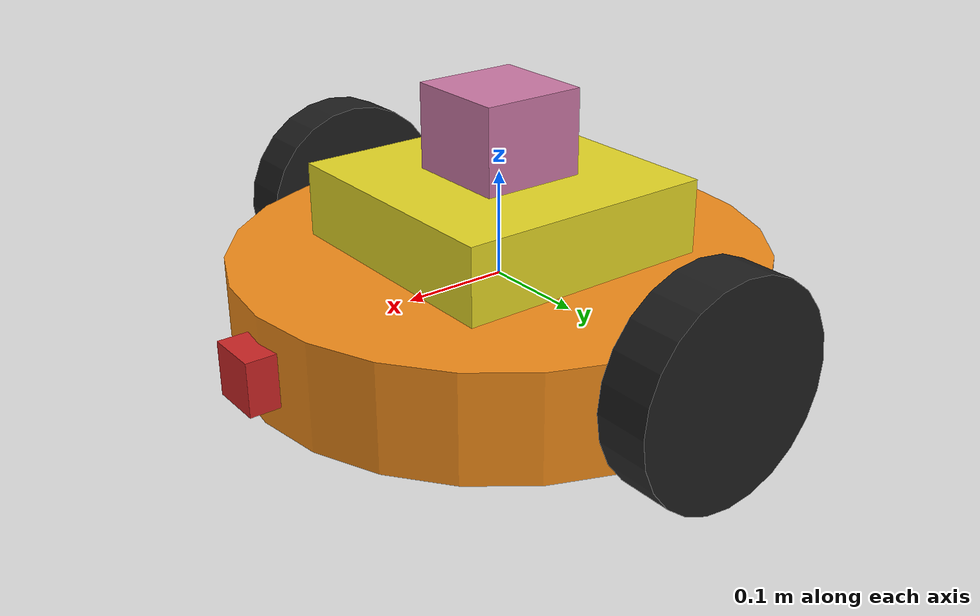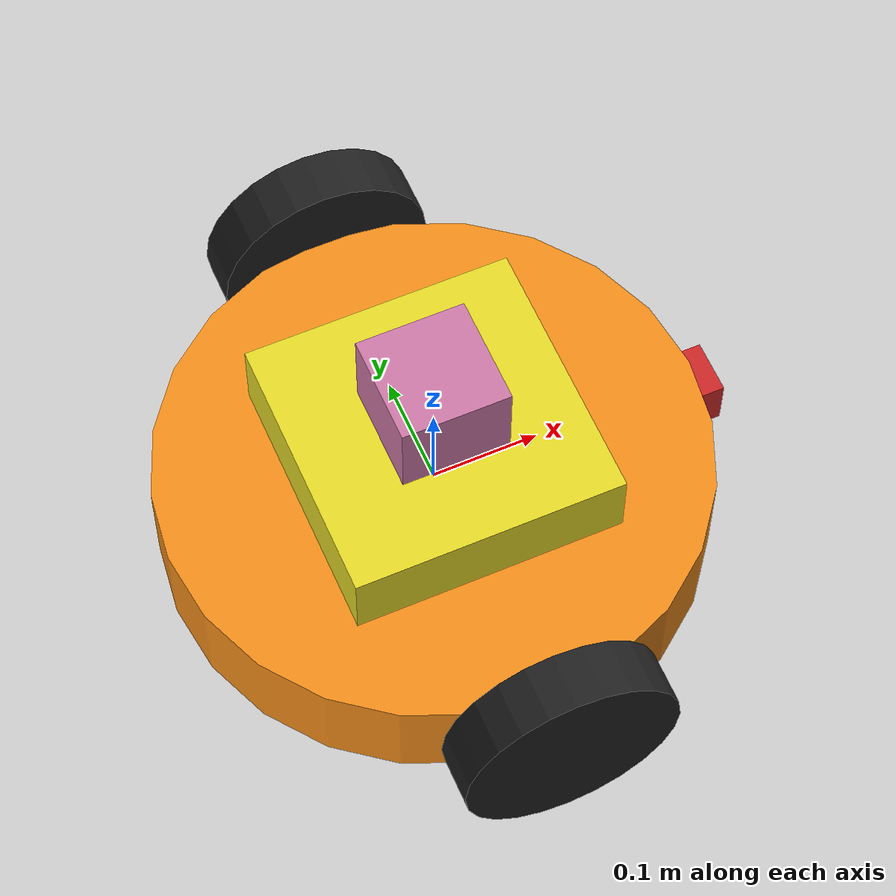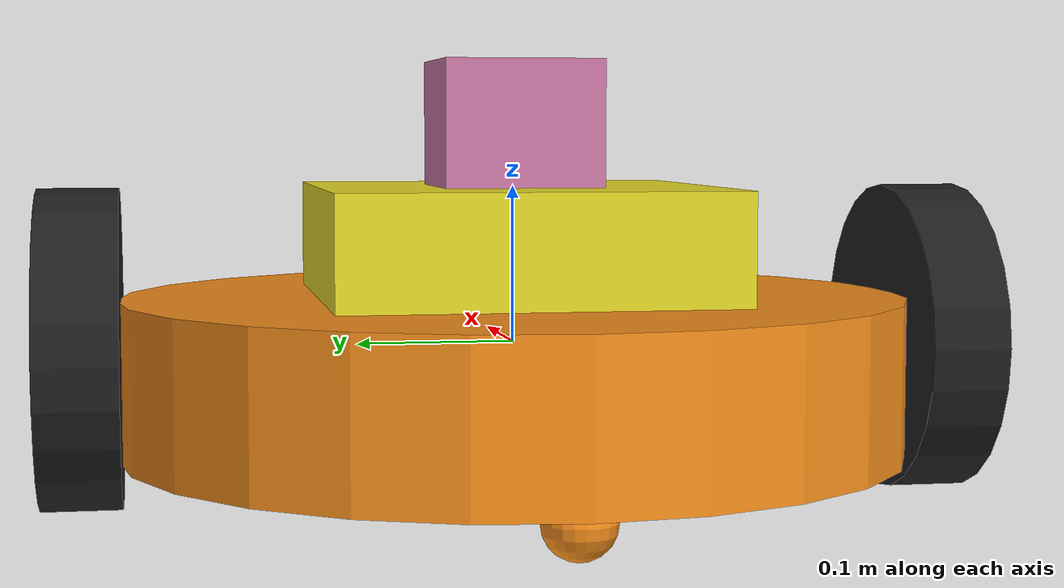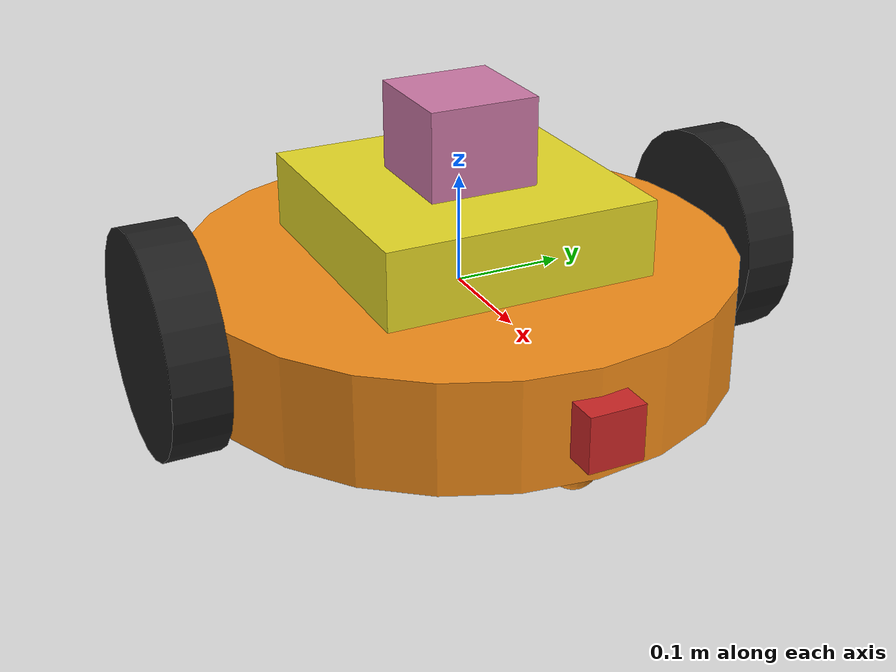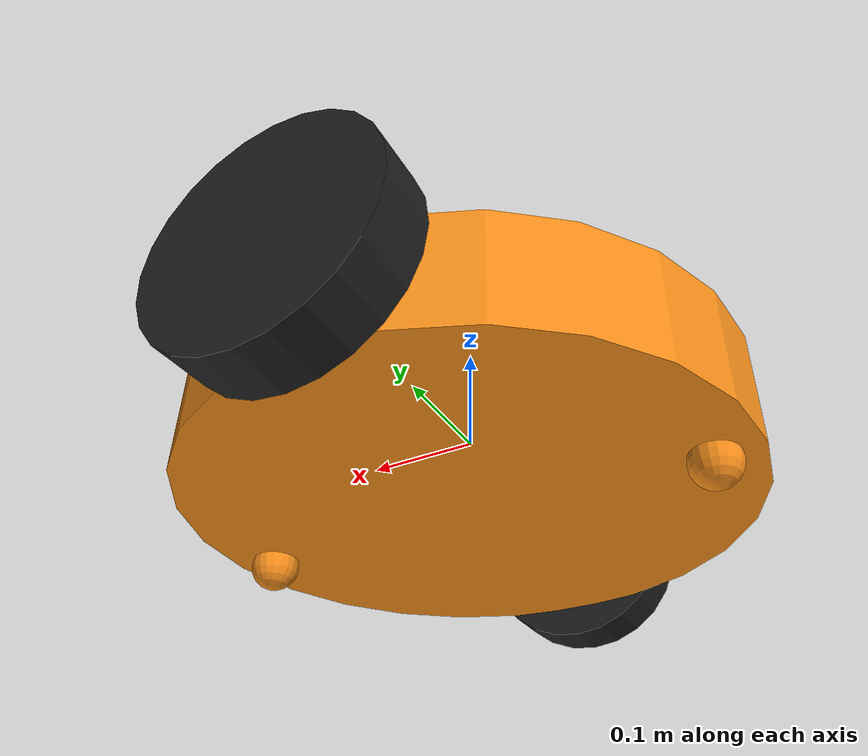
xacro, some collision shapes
<?xml version='1.0'?>

<robot name="my_robot" xmlns:xacro="http://www.ros.org/wiki/xacro">
<xacro:include filename="$(find my_robot)/urdf/my_robot.gazebo" />
<!--link-->

<link name="robot_footprint"></link>

<link name='chassis'>
    <pose>0 0 0.1 0 0 0</pose>

 <inertial>
      <mass value="15.0"/>
      <origin xyz="0.0 0 0" rpy=" 0 0 0"/>
      <inertia
          ixx="0.1" ixy="0" ixz="0"
          iyy="0.1" iyz="0"
          izz="0.1"
      />
 </inertial>

 <collision name='chassis_collision'>
      <origin xyz="0 0 -0.02" rpy=" 0 0 0"/>
      <geometry>
        <cylinder length="0.1" radius="0.25"/>
      </geometry>
 </collision>

 <visual name='chassis_visual'>
      <origin xyz="0 0 -0.02" rpy=" 0 0 0"/>
      <geometry>
        <cylinder length="0.1" radius="0.25"/>
      </geometry>
 </visual>

 <collision name='back_caster_collision'>
      <origin xyz="-0.21 0 -0.077" rpy=" 0 0 0"/>
      <geometry>
        <sphere radius="0.022"/>
      </geometry>
 </collision>

 <visual name='back_caster_visual'>
      <origin xyz="-0.21 0 -0.077" rpy=" 0 0 0"/>
      <geometry>
        <sphere radius="0.022"/>
      </geometry>
 </visual>

 <collision name='front_caster_collision'>
      <origin xyz="0.21 0 -0.077" rpy=" 0 0 0"/>
      <geometry>
        <sphere radius="0.022"/>
      </geometry>
 </collision>

 <visual name='front_caster_visual'>
      <origin xyz="0.21 0 -0.077" rpy=" 0 0 0"/>
      <geometry>
        <sphere radius="0.022"/>
      </geometry>
 </visual>

</link>

<link name='upper_chassis'>
    <pose>0 0 0.1 0 0 0</pose>

 <inertial>
      	<mass value="2.0"/>
      	<origin xyz="0.0 0 0" rpy=" 0 0 0"/>
  <inertia
	ixx="0.1" ixy="0" ixz="0"
	iyy="0.1" iyz="0"
  	izz="0.1"
      	/>
 </inertial>

 <collision name='upper_chasis_collision'>
    <origin xyz="0 0 0" rpy=" 0 0 0"/>
     	<geometry>
    <box size="0.25 .25 .1"/>
    </geometry>
 </collision>

 <visual>
      <origin xyz="0 0 0" rpy=" 0 0 0"/>
      <geometry>
        <box size="0.25 .25 .1"/>
      </geometry>
 </visual>
</link>

<link name='right_wheel'>
    <pose>0 0 0.1 0 0 0</pose>

    <inertial>
      <mass value="5.0"/>
      <origin xyz="0.0 0 0" rpy="0 1.5707 1.5707"/>
      <inertia
          ixx="0.1" ixy="0" ixz="0"
          iyy="0.1" iyz="0"
          izz="0.1"
      />
    </inertial>

    <collision name='collision_right_wheel'>
      <origin xyz="0 0 0" rpy=" 0 1.5707 1.5707"/>
      <geometry>
        <cylinder length="0.05" radius="0.1"/>
      </geometry>
    </collision>

    <visual>
      <origin xyz="0 0 0" rpy=" 0 1.5707 1.5707"/>
      <geometry>
        <cylinder length="0.05" radius="0.1"/>
      </geometry>
    </visual>
</link>

<link name='left_wheel'>
    <pose>0 0 0.1 0 0 0</pose>

    <inertial>
      <mass value="5.0"/>
      <origin xyz="0.0 0 0" rpy=" 0 1.5707 1.5707"/>
      <inertia
          ixx="0.1" ixy="0" ixz="0"
          iyy="0.1" iyz="0"
          izz="0.1"
      />
    </inertial>

    <collision name='collision_left_wheel'>
      <origin xyz="0 0 0" rpy=" 0 1.5707 1.5707"/>
      <geometry>
        <cylinder length="0.05" radius="0.1"/>
      </geometry>
    </collision>

    <visual>
      <origin xyz="0 0 0" rpy=" 0 1.5707 1.5707"/>
      <geometry>
        <cylinder length="0.05" radius="0.1"/>
      </geometry>
    </visual>

</link>

<link name='camera'>
    <pose>0 0 0.1 0 0 0</pose>

    <inertial>
      <mass value="0.1"/>
      <origin xyz="0.05 0.05 0.05" rpy=" 0 0 0"/>
      <inertia
          ixx="1e-6" ixy="0" ixz="0"
          iyy="1e-6" iyz="0"
          izz="1e-6"
      />
    </inertial>

    <collision name='collision_camera'>
      <origin xyz="0 0 0" rpy="0 0 0"/>
      <geometry>
        <box size="0.05 0.05 0.05"/>
      </geometry>
    </collision>

    <visual>
      <origin xyz="0 0 0" rpy=" 0 0 0"/>
      <geometry>
        <box size="0.05 0.05 0.05"/>
      </geometry>
    </visual>
</link>

<link name='hokuyo'>
    <pose>0 0 0.1 0 0 0</pose>

    <inertial>
      <mass value="1e-5"/>
      <origin xyz="0 0 0" rpy=" 0 0 0"/>
      <inertia
          ixx="1e-6" ixy="0" ixz="0"
          iyy="1e-6" iyz="0"
          izz="1e-6"
      />
    </inertial>

    <collision name='collision_hokuyo'>
      <origin xyz="0 0 0" rpy="0 0 0"/>
      <geometry>
        <box size="0.1 0.1 0.1"/>
      </geometry>
    </collision>

    <visual name='visual_hokuyo'>
      <origin xyz="0 0 0" rpy=" 0 0 0"/>
      <geometry>
        <mesh filename = "package://my_robot/meshes/hokuyo.dae"/>
      </geometry>
    </visual>
</link>

<link name="camera_link_optical">
</link>

<!--joint-->

  <joint name="robot_footprint_joint" type="fixed">
    <origin xyz="0 0 0" rpy="0 0 0" />
    <parent link="robot_footprint"/>
    <child link="chassis" />
  </joint>

  <joint name="chassis_joint" type="fixed">
    <origin xyz="0 0 0.05" rpy="0 0 0" />
    <parent link="chassis"/>
    <child link="upper_chassis" />
  </joint>

  <joint type="continuous" name="left_wheel_hinge">
    <origin xyz="0 0.272 0" rpy="0 0 0"/>
    <child link="left_wheel"/>
    <parent link="chassis"/>
    <axis xyz="0 1 0" rpy="0 0 0"/>
    <limit effort="10000" velocity="1000"/>
    <dynamics damping="1.0" friction="1.0"/>
  </joint>

  <joint type="continuous" name="right_wheel_hinge">
    <origin xyz="0 -0.272 0" rpy="0 0 0"/>
    <child link="right_wheel"/>
    <parent link="chassis"/>
    <axis xyz="0 1 0" rpy="0 0 0"/>
    <limit effort="10000" velocity="1000"/>
    <dynamics damping="1.0" friction="1.0"/>
  </joint>

  <joint type="fixed" name="camera_joint">
    <origin xyz="0.25 0 -0.02" rpy="0 0 0"/>
    <child link="camera"/>
    <parent link="chassis"/>
    <axis xyz="0 1 0" rpy="0 0 0"/>
  </joint>

  <joint type="fixed" name="hokuyo_joint">
    <origin xyz="0 0 .13" rpy="0 0 0"/>
    <child link="hokuyo"/>
    <parent link="chassis"/>
    <axis xyz="0 1 0" rpy="0 0 0"/>
  </joint>

  <joint name="camera_optical_joint" type="fixed">
    <origin xyz="0 0 0" rpy="-1.5707 0 -1.5707"/>
    <parent link="camera"/>
    <child link="camera_link_optical"/>
  </joint>
</robot>
